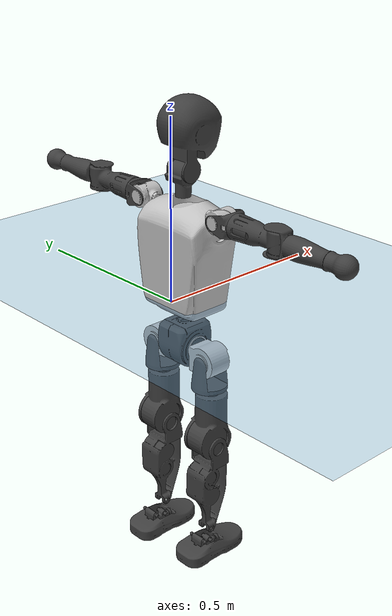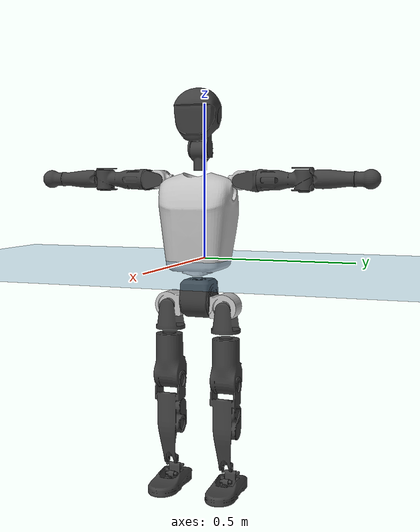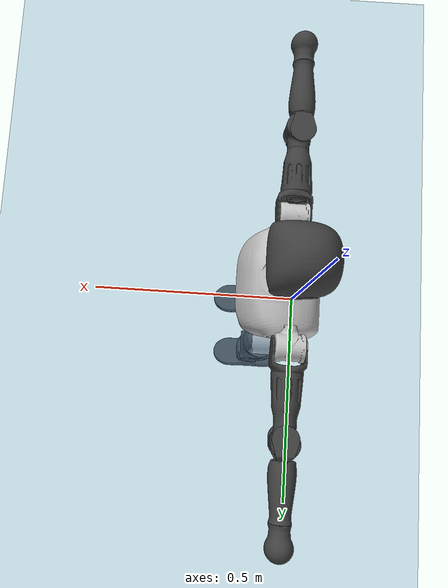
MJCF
<mujoco model="T1">
  <compiler angle="radian" assetdir="assets" balanceinertia="true" inertiafromgeom="false"/>

  <option timestep="0.005" density="1.2" viscosity="2e-05"/>

  <size nkey="1"/>

  <visual>
    <quality shadowsize="8192"/>
    <map shadowclip="0.5"/>
  </visual>

  <default>
    <default class="/">
      <joint armature="0.01" damping="0.01" frictionloss="0.1"/>
      <geom contype="0" conaffinity="0" group="1" solref="-1000 -80"/>
      <site size="0.01 0.005 0.005" group="5"/>
      <general forcelimited="true" biastype="affine" gainprm="25" biasprm="0 -25 -0.6"/>
      <default class="t1">
        <geom rgba="0.25 0.25 0.25 1"/>
        <default class="visual">
          <geom type="mesh" group="2"/>
        </default>
        <default class="collision">
          <geom group="3"/>
        </default>
        <default class="foot">
          <geom size="0.1115 0.05 0.015" type="box" condim="6" group="4" priority="1" solimp="0.015 1 0.015"/>
        </default>
        <default class="reward_collision_sphere">
          <geom group="5" rgba="1 0 0 1"/>
        </default>
      </default>
    </default>
  </default>

  <asset>
    <texture type="skybox" colorspace="auto" name="//unnamed_texture_0" builtin="gradient" rgb1="0.95 0.95 0.95" rgb2="0.95 0.95 0.95" width="100" height="600"/>
    <texture type="2d" colorspace="auto" name="texplane" builtin="checker" rgb1="0.345 0.575 0.748" rgb2="0.345 0.575 0.748" markrgb="1 1 1" width="512" height="512"/>
    <material name="MatPlane" class="/" texture="texplane" texuniform="true" texrepeat="2 2" specular="0.9"/>
    <mesh name="Trunk" class="/" file="Trunk.stl"/>
    <mesh name="H1" class="/" file="H1.stl"/>
    <mesh name="H2" class="/" file="H2.stl"/>
    <mesh name="AL1" class="/" file="AL1.stl"/>
    <mesh name="AL2" class="/" file="AL2.stl"/>
    <mesh name="AL3" class="/" file="AL3.stl"/>
    <mesh name="left_hand_link" class="/" file="left_hand_link.stl"/>
    <mesh name="AR1" class="/" file="AR1.stl"/>
    <mesh name="AR2" class="/" file="AR2.stl"/>
    <mesh name="AR3" class="/" file="AR3.stl"/>
    <mesh name="right_hand_link" class="/" file="right_hand_link.stl"/>
    <mesh name="Waist" class="/" file="Waist.stl"/>
    <mesh name="Hip_Pitch_Left" class="/" file="Hip_Pitch_Left.stl"/>
    <mesh name="Hip_Roll_Left" class="/" file="Hip_Roll_Left.stl"/>
    <mesh name="Hip_Yaw_Left" class="/" file="Hip_Yaw_Left.stl"/>
    <mesh name="Shank_Left" class="/" file="Shank_Left.stl"/>
    <mesh name="Ankle_Cross_Left" class="/" file="Ankle_Cross_Left.stl"/>
    <mesh name="left_foot_link" class="/" file="left_foot_link.stl"/>
    <mesh name="Hip_Pitch_Right" class="/" file="Hip_Pitch_Right.stl"/>
    <mesh name="Hip_Roll_Right" class="/" file="Hip_Roll_Right.stl"/>
    <mesh name="Hip_Yaw_Right" class="/" file="Hip_Yaw_Right.stl"/>
    <mesh name="Shank_Right" class="/" file="Shank_Right.stl"/>
    <mesh name="Ankle_Cross_Right" class="/" file="Ankle_Cross_Right.stl"/>
    <mesh name="right_foot_link" class="/" file="right_foot_link.stl"/>
  </asset>

  <worldbody>
    <geom name="floor" class="/" size="100 100 0.125" type="plane" group="0" material="MatPlane"/>
    <light name="toplight_shadow" class="/" pos="0 0 5" dir="0.0990148 0.0990148 -0.990148" type="directional" ambient="0.04 0.04 0.04" diffuse="0.55 0.55 0.55" specular="0.12 0.12 0.12"/>
    <light name="toplight_fill" class="/" pos="0 0 5" dir="0.0990148 0.0990148 -0.990148" type="directional" castshadow="false" ambient="0.04 0.04 0.04" diffuse="0.3 0.3 0.3" specular="0.08 0.08 0.08"/>
    <body name="trunk" childclass="t1" pos="0.00095528 -0.00270992 0.000364614" quat="1 0.000344272 -0.000308594 -0.000587699">
      <inertial pos="0.0360626 -0.00306229 0.120469" quat="0.999914 0.000810178 -0.0125064 0.0037347" mass="8.9314" diaginertia="0.0157775 0.0449307 0.119501"/>
      <joint name="//unnamed_joint_0" type="free" armature="0" damping="0" frictionloss="0"/>
      <geom name="//unnamed_geom_1" class="visual" rgba="0.76 0.76 0.76 1" mesh="Trunk"/>
      <geom name="//unnamed_geom_2" class="collision" size="0.0695668 0.0927557 0.139134" pos="0.0423561 0 0.1404" type="box"/>
      <geom name="//unnamed_geom_3" class="reward_collision_sphere" size="0.106669" pos="0.0423561 0 0.117"/>
      <geom name="//unnamed_geom_4" class="reward_collision_sphere" size="0.0139134" pos="0.0423561 0.0770728 0"/>
      <geom name="//unnamed_geom_5" class="reward_collision_sphere" size="0.0139134" pos="0.0423561 -0.0770728 0"/>
      <geom name="//unnamed_geom_6" class="reward_collision_sphere" size="0.0139134" pos="0.0423561 0.0970211 0.210599"/>
      <geom name="//unnamed_geom_7" class="reward_collision_sphere" size="0.0139134" pos="0.0423561 -0.0970211 0.210599"/>
      <site name="imu" pos="0.0137839 0.00334019 -0.0137669" size="0.00927557"/>
      <camera name="track" pos="0 -1.81348 0" quat="0.707107 0.707107 0 0" mode="trackcom"/>
      <camera name="ego_camera" pos="0.0861241 0 0.491399" quat="-0.5 -0.5 0.5 0.5"/>
      <body name="H1" pos="0.0402729 0.00227503 0.286305" quat="0.999999 -0.00075784 0.000754311 0.000120482">
        <inertial pos="-0.00420789 -0.000330348 0.0697236" quat="0.759331 -0.010238 -0.000841852 0.650623" mass="0.364553" diaginertia="4.36202e-05 0.000139855 0.000315851"/>
        <joint name="AAHead_yaw" pos="0 0 0" axis="0.00691924 -0.00215774 0.999974" stiffness="0.000155427" range="-1.59763 1.574" armature="0.00794094" damping="0.0121794" frictionloss="0.0904079"/>
        <geom name="//unnamed_geom_8" class="visual" mesh="H1"/>
        <body name="H2" pos="0.00192432 0.00123605 0.0702392" quat="1 -1.75464e-05 2.90022e-05 -1.65626e-06">
          <inertial pos="0.0068851 0.00261822 0.116014" quat="0.988532 0.105562 -0.074361 -0.0783036" mass="0.513167" diaginertia="0.000370769 0.00121674 0.00383044"/>
          <joint name="Head_pitch" pos="0 0 0" axis="-0.0116858 -0.999929 0.00230742" range="-1.21296 0.351979" armature="0.00862766" damping="0.00960772" frictionloss="0.0941215"/>
          <geom name="//unnamed_geom_9" class="visual" mesh="H2"/>
          <geom name="//unnamed_geom_10" class="collision" size="0.0742046" pos="0.00705935 0 0.1287"/>
          <geom name="//unnamed_geom_11" class="reward_collision_sphere" size="0.0834801" pos="0.0141187 0 0.117"/>
        </body>
      </body>
      <body name="AL1" pos="0.0394177 0.0990102 0.255332" quat="1 -3.09755e-05 0.000302191 -4.99393e-05">
        <inertial pos="-0.00196541 0.0394841 -0.00146046" quat="0.503389 0.492371 -0.506081 0.498049" mass="0.424094" diaginertia="0.000240388 0.000795846 0.000621805"/>
        <joint name="Left_Shoulder_Pitch" pos="0 0 0" axis="-0.00641224 0.999979 -0.00057612" stiffness="0.00979268" range="-3.31954 1.16757" armature="0.0092311" damping="0.00971903" frictionloss="0.0940627"/>
        <geom name="//unnamed_geom_12" class="visual" rgba="0.76 0.76 0.76 1" mesh="AL1"/>
        <body name="AL2" pos="0.00131473 0.0437153 -0.00280702" quat="1 -6.44428e-05 -2.34694e-06 -3.46432e-06">
          <inertial pos="0.00524357 0.0317255 -0.00242338" quat="0.485331 0.505697 -0.485709 0.522313" mass="0.127414" diaginertia="7.09816e-05 0.000212843 0.000387451"/>
          <joint name="Left_Shoulder_Roll" pos="0 0 0" axis="-0.999925 -0.00783687 0.00942107" range="-1.55991 1.73026" armature="0.00930199" damping="0.0105782" frictionloss="0.0913059"/>
          <geom name="//unnamed_geom_13" class="visual" mesh="AL2"/>
          <body name="AL3" pos="0.000904704 0.0550286 0.00264786" quat="1 0.000192793 -0.000190932 -0.000320244">
            <inertial pos="-0.00345758 0.0773568 -0.000734916" quat="0.71015 0.704045 0.00117424 0.00241643" mass="0.814518" diaginertia="0.00232989 0.00785472 0.00135463"/>
            <joint name="Left_Elbow_Pitch" pos="0 0 0" axis="0.00167788 -0.999994 -0.00296106" range="-2.30739 2.27082" armature="0.00928583" damping="0.0107486" frictionloss="0.0973604"/>
            <geom name="//unnamed_geom_14" class="visual" mesh="AL3"/>
            <geom name="//unnamed_geom_15" class="collision" size="0.0278267 0.0695668" pos="0 0.0453369 0" quat="0.707105 0.707108 0 0" type="cylinder"/>
            <geom name="//unnamed_geom_16" class="reward_collision_sphere" size="0.033392"/>
            <body name="left_hand_link" pos="0.00212764 0.136444 0.00324298" quat="1 -6.08703e-06 7.24579e-06 -1.09874e-05">
              <inertial pos="0.00164294 0.096559 -0.00164493" quat="0.708951 0.705203 0.00594977 -0.00642959" mass="0.261288" diaginertia="0.00143755 0.00498683 0.000487684"/>
              <joint name="Left_Elbow_Yaw" pos="0 0 0" axis="-0.00318046 0.00731407 0.999968" range="-2.4492 -0.0158006" armature="0.0107228" damping="0.0242298" frictionloss="0.0923655"/>
              <geom name="//unnamed_geom_17" class="visual" mesh="left_hand_link"/>
              <geom name="//unnamed_geom_18" class="collision" size="0.0278267 0.0811612" pos="0 0.117876 0" quat="0.707105 0.707108 0 0" type="cylinder"/>
              <geom name="//unnamed_geom_19" class="reward_collision_sphere" size="0.0463778"/>
              <geom name="//unnamed_geom_20" class="reward_collision_sphere" size="0.0324645" pos="0 0.0997413 0"/>
              <geom name="//unnamed_geom_21" class="reward_collision_sphere" size="0.0324645" pos="0 0.194949 0"/>
            </body>
          </body>
        </body>
      </body>
      <body name="AR1" pos="0.0420337 -0.0926159 0.257311" quat="1 -1.62507e-05 0.000353922 5.48149e-05">
        <inertial pos="-0.000802241 -0.0435049 0.00250028" quat="0.503627 0.494918 -0.504872 0.496508" mass="0.429464" diaginertia="0.00023558 0.000815806 0.00064667"/>
        <joint name="Right_Shoulder_Pitch" pos="0 0 0" axis="0.00633974 -0.99998 -0.000520439" range="-1.16932 3.3177" armature="0.00844421" damping="0.0210419" frictionloss="0.0811342"/>
        <geom name="//unnamed_geom_22" class="visual" rgba="0.76 0.76 0.76 1" mesh="AR1"/>
        <body name="AR2" pos="0.000607174 -0.0433043 -0.0014974" quat="0.999999 -0.000137666 -9.36721e-05 -0.00123457">
          <inertial pos="0.00030766 -0.0326182 -0.000302677" quat="0.507468 0.49322 -0.519507 0.478877" mass="0.123743" diaginertia="6.77854e-05 0.000211472 0.00037197"/>
          <joint name="Right_Shoulder_Roll" pos="0 0 0" axis="-0.999993 -0.00257503 -0.00289064" range="-1.7902 1.51996" armature="0.00929128" damping="0" frictionloss="0.0955299"/>
          <geom name="//unnamed_geom_23" class="visual" mesh="AR2"/>
          <body name="AR3" pos="-0.00349434 -0.0551173 0.00114091" quat="1 0.000880747 2.54466e-05 0.000440988">
            <inertial pos="5.17534e-05 -0.0785103 0.00268108" quat="0.708034 0.706178 -0.000474054 -0.000516654" mass="0.808666" diaginertia="0.00227055 0.00761436 0.00131722"/>
            <joint name="Right_Elbow_Pitch" pos="0 0 0" axis="-0.00348129 0.999906 0.0132267" range="-2.31329 2.2684" armature="0.00898298" damping="0.011985" frictionloss="0.105199"/>
            <geom name="//unnamed_geom_24" class="visual" mesh="AR3"/>
            <geom name="//unnamed_geom_25" class="collision" size="0.0278267 0.0695668" pos="0 -0.0453369 0" quat="0.707105 0.707108 0 0" type="cylinder"/>
            <geom name="//unnamed_geom_26" class="reward_collision_sphere" size="0.033392"/>
            <body name="right_hand_link" pos="-0.00392442 -0.136154 0.00161991" quat="0.999999 0.00072394 -0.000965558 0.000110981">
              <inertial pos="0.00057792 -0.0972157 -0.00110197" quat="0.70694 0.707272 -0.000985908 -0.00131687" mass="0.263906" diaginertia="0.00141708 0.00477383 0.00047642"/>
              <joint name="Right_Elbow_Yaw" pos="0 0 0" axis="-0.00199622 -0.00347754 0.999992" range="-0.00809215 2.39774" armature="0.00841578" damping="0.0122738" frictionloss="0.094597"/>
              <geom name="//unnamed_geom_27" class="visual" mesh="right_hand_link"/>
              <geom name="//unnamed_geom_28" class="collision" size="0.0278267 0.0811612" pos="0 -0.117876 0" quat="0.707105 0.707108 0 0" type="cylinder"/>
              <geom name="//unnamed_geom_29" class="reward_collision_sphere" size="0.0463778"/>
              <geom name="//unnamed_geom_30" class="reward_collision_sphere" size="0.0324645" pos="0 -0.0997413 0"/>
              <geom name="//unnamed_geom_31" class="reward_collision_sphere" size="0.0324645" pos="0 -0.194949 0"/>
            </body>
          </body>
        </body>
      </body>
      <body name="Waist" pos="0.043105 -0.00147342 -0.132087" quat="1 -7.237e-05 -0.000328311 -0.000221268">
        <inertial pos="0.00314231 0.00198338 0.00903972" quat="0.982609 0.0123254 -0.185275 -7.15522e-05" mass="1.93009" diaginertia="0.00089138 0.00302303 0.00970707"/>
        <joint name="Waist" pos="0 0 0" axis="-0.000528837 -0.00943544 0.999955" range="-1.62159 1.52329" armature="0.0087062" damping="0.00677895" frictionloss="0.105885"/>
        <geom name="//unnamed_geom_32" class="visual" mesh="Waist"/>
        <body name="Hip_Pitch_Left" pos="0.00412803 0.0938206 -0.00113791" quat="1 1.63106e-05 -3.63834e-05 0.000939634">
          <inertial pos="-0.00141681 -0.00753324 -0.0230961" quat="0.973383 0.228938 0.0105206 -0.00175354" mass="0.778388" diaginertia="0.000305722 0.00086712 0.00266189"/>
          <joint name="Left_Hip_Pitch" pos="0 0 0" axis="0.0166506 0.999861 0.000365281" stiffness="0.0204245" range="-1.79778 1.61295" armature="0.00874696" damping="0" frictionloss="0.09066"/>
          <geom name="//unnamed_geom_33" class="visual" rgba="0.76 0.76 0.76 1" mesh="Hip_Pitch_Left"/>
          <body name="Hip_Roll_Left" pos="0.00158892 0.000677545 -0.0262999" quat="1 6.37269e-05 3.26337e-05 -0.000334291">
            <inertial pos="0.000946498 0.000248918 -0.065068" quat="0.705641 -0.00813199 -0.00698343 0.708488" mass="0.31308" diaginertia="0.000320976 0.000931132 0.00114034"/>
            <joint name="Left_Hip_Roll" pos="0 0 0" axis="-0.999887 -0.0125304 -0.0082965" range="-1.61554 0.231294" armature="0.00908648" damping="0.019444" frictionloss="0.089219"/>
            <geom name="//unnamed_geom_34" class="visual" mesh="Hip_Roll_Left"/>
            <geom name="//unnamed_geom_35" class="reward_collision_sphere" size="0.0510156"/>
            <body name="Hip_Yaw_Left" pos="0.00167236 0.00122012 -0.0968797" quat="1 -0.000192468 9.80754e-06 -0.00033154">
              <inertial pos="-0.00736836 -0.00085561 -0.102703" quat="0.701311 -0.0332741 -0.0230358 0.711706" mass="1.73208" diaginertia="0.00476723 0.0158166 0.00607325"/>
              <joint name="Left_Hip_Yaw" pos="0 0 0" axis="0.000720462 -0.00125392 -0.999999" stiffness="0.00413148" range="-1.00617 1.01069" armature="0.0107058" damping="0.0120217" frictionloss="0.0950361"/>
              <geom name="//unnamed_geom_36" class="visual" mesh="Hip_Yaw_Left"/>
              <geom name="//unnamed_geom_37" class="collision" size="0.0463778 0.0742046" type="cylinder"/>
              <body name="Shank_Left" pos="-0.00913322 -0.00131335 -0.158402" quat="0.999999 0.000781068 0.000959711 -0.00011238">
                <inertial pos="-0.00442963 0.000427387 -0.147689" quat="0.997532 -0.000372823 -0.0245006 0.0658001" mass="1.35929" diaginertia="0.00601582 0.0200186 0.00379488"/>
                <joint name="Left_Knee_Pitch" pos="0 0 0" axis="0.00105468 0.999992 0.00379651" stiffness="0.00240599" range="0.0567384 2.3493" armature="0.00896116" damping="0" frictionloss="0.0860884"/>
                <geom name="//unnamed_geom_38" class="visual" mesh="Shank_Left"/>
                <geom name="//unnamed_geom_39" class="collision" size="0.0463778 0.0695668" pos="0 0 -0.1404" type="cylinder"/>
                <geom name="//unnamed_geom_40" class="reward_collision_sphere" size="0.0602912"/>
                <body name="Ankle_Cross_Left" pos="-0.00315488 -0.00230448 -0.330029" quat="1 -0.000354366 0.000381697 -3.63211e-05">
                  <inertial pos="-0.00396614 0.00151436 -0.00931486" quat="0.44232 0.551647 0.549652 0.444884" mass="0.0567013" diaginertia="5.29294e-06 1.55967e-05 2.48369e-05"/>
                  <joint name="Left_Ankle_Pitch" pos="0 0 0" axis="-0.0108732 0.999939 -0.00189119" stiffness="0.0110689" range="-0.92763 0.363381" armature="0.00834394" damping="0.0205765" frictionloss="0.105866"/>
                  <geom name="//unnamed_geom_41" class="visual" mesh="Ankle_Cross_Left"/>
                  <body name="left_foot_link" pos="-0.00201271 0.00246366 -0.0132965" quat="1 0.000217797 0.000244834 -0.000345134">
                    <inertial pos="-0.00161001 -0.000204126 -0.0127369" quat="-0.0111481 0.62725 0.000574889 0.778738" mass="0.534135" diaginertia="0.000496042 0.00149346 0.00500247"/>
                    <joint name="Left_Ankle_Roll" pos="0 0 0" axis="-0.999999 -0.000330224 -0.00127754" range="-0.476678 0.412634" armature="0.010707" damping="0.0170501" frictionloss="0.0853727"/>
                    <geom name="//unnamed_geom_42" class="visual" mesh="left_foot_link"/>
                    <geom name="left_foot" class="foot" size="0.105545 0.0416903 0.014371" pos="0.00705935 0 -0.0175499"/>
                    <geom name="//unnamed_geom_44" class="reward_collision_sphere" size="0.048233" pos="0.00705935 0 -0.0175499"/>
                    <geom name="//unnamed_geom_45" class="reward_collision_sphere" size="0.0278267" pos="0.0670639 -0.020855 -0.0175499"/>
                    <geom name="//unnamed_geom_46" class="reward_collision_sphere" size="0.0278267" pos="-0.0494155 -0.020855 -0.0175499"/>
                    <site name="left_foot" class="foot" pos="0.00705935 0 -0.0175499" size="0.00927557"/>
                  </body>
                </body>
              </body>
            </body>
          </body>
        </body>
        <body name="Hip_Pitch_Right" pos="0.00108477 -0.0987903 0.000742118" quat="1 -0.000111537 0.000449957 0.000722934">
          <inertial pos="0.00243342 0.00429121 -0.0180207" quat="0.973896 -0.226593 0.0134472 -0.00133287" mass="0.816376" diaginertia="0.000316431 0.000938312 0.00280772"/>
          <joint name="Right_Hip_Pitch" pos="0 0 0" axis="-0.00426417 -0.999989 0.0017339" range="-1.61087 1.78857" armature="0.0106979" damping="0.00860589" frictionloss="0.0816479"/>
          <geom name="//unnamed_geom_47" class="visual" rgba="0.76 0.76 0.76 1" mesh="Hip_Pitch_Right"/>
          <body name="Hip_Roll_Right" pos="0.000989977 -0.00177105 -0.02488" quat="1 -1.096e-05 -0.000164477 2.62644e-05">
            <inertial pos="0.00275838 0.00190122 -0.0600243" quat="0.708737 -0.0103316 -0.00660938 0.705366" mass="0.323881" diaginertia="0.000315181 0.000993348 0.00116977"/>
            <joint name="Right_Hip_Roll" pos="0 0 0" axis="-0.99986 -0.0147617 0.00787839" stiffness="0.000561783" range="-0.201897 1.55608" armature="0.00917938" damping="0.00245774" frictionloss="0.0872666"/>
            <geom name="//unnamed_geom_48" class="visual" mesh="Hip_Roll_Right"/>
            <geom name="//unnamed_geom_49" class="reward_collision_sphere" size="0.0510156"/>
            <body name="Hip_Yaw_Right" pos="0.00139353 -0.00354735 -0.0938886" quat="0.999999 -0.000655853 -7.29298e-05 0.000845941">
              <inertial pos="-0.00437933 -0.00342985 -0.101776" quat="0.715163 -0.0330503 -0.034202 0.697337" mass="1.77864" diaginertia="0.00446192 0.0160499 0.0056103"/>
              <joint name="Right_Hip_Yaw" pos="0 0 0" axis="0.00113997 0.000599711 -0.999999" stiffness="0.0115682" range="-0.991505 1.02014" armature="0.00799682" damping="0.0116657" frictionloss="0.0882845"/>
              <geom name="//unnamed_geom_50" class="visual" mesh="Hip_Yaw_Right"/>
              <geom name="//unnamed_geom_51" class="collision" size="0.0463778 0.0742046" type="cylinder"/>
              <body name="Shank_Right" pos="-0.00861123 0.00197072 -0.158701" quat="0.999999 0.00153051 4.17863e-05 -7.00046e-05">
                <inertial pos="-0.00172283 -0.00150885 -0.143172" quat="0.999397 -0.00224644 -0.0170348 -0.0301881" mass="1.34463" diaginertia="0.00617615 0.0207424 0.00433691"/>
                <joint name="Right_Knee_Pitch" pos="0 0 0" axis="-0.000958473 -0.999997 0.0023838" range="-2.3518 0.0547054" armature="0.00924563" damping="0.0160244" frictionloss="0.0975857"/>
                <geom name="//unnamed_geom_52" class="visual" mesh="Shank_Right"/>
                <geom name="//unnamed_geom_53" class="collision" size="0.0463778 0.0695668" pos="0 0 -0.1404" type="cylinder"/>
                <geom name="//unnamed_geom_54" class="reward_collision_sphere" size="0.0602912"/>
                <body name="Ankle_Cross_Right" pos="0.00420952 0.00126648 -0.328092" quat="1 0.000237893 -0.000949419 0.000180818">
                  <inertial pos="-0.00166238 0.00260885 -0.00848595" quat="0.442872 0.551019 0.551784 0.442467" mass="0.0588425" diaginertia="5.09431e-06 1.57559e-05 2.41491e-05"/>
                  <joint name="Right_Ankle_Pitch" pos="0 0 0" axis="0.00395273 -0.999918 0.0122078" stiffness="0.00878975" range="-0.354369 0.884002" armature="0.00871332" damping="0.0129004" frictionloss="0.0941008"/>
                  <geom name="//unnamed_geom_55" class="visual" mesh="Ankle_Cross_Right"/>
                  <body name="right_foot_link" pos="0.00309957 -0.00264264 -0.0120658" quat="1 0.000252656 -0.000184659 0.000217016">
                    <inertial pos="-0.000211337 0.00234144 -0.0104395" quat="0.00859807 0.626513 -0.00716141 0.779331" mass="0.563515" diaginertia="0.000480921 0.00150796 0.00504738"/>
                    <joint name="Right_Ankle_Roll" pos="0 0 0" axis="-0.999992 0.00353822 0.00159543" range="-0.440707 0.382783" armature="0.00891945" damping="0.0104123" frictionloss="0.0883695"/>
                    <geom name="//unnamed_geom_56" class="visual" mesh="right_foot_link"/>
                    <geom name="right_foot" class="foot" size="0.0968594 0.0494769 0.0142187" pos="0.00705935 0 -0.0175499"/>
                    <geom name="//unnamed_geom_58" class="reward_collision_sphere" size="0.0371023"/>
                    <geom name="//unnamed_geom_59" class="reward_collision_sphere" size="0.0278267" pos="0.00705935 0 -0.0175499"/>
                    <geom name="//unnamed_geom_60" class="reward_collision_sphere" size="0.0278267" pos="0.0670639 0.020855 -0.0175499"/>
                    <geom name="//unnamed_geom_61" class="reward_collision_sphere" size="0.0278267" pos="-0.0494155 0.020855 -0.0175499"/>
                    <site name="right_foot" class="foot" pos="0.00705935 0 -0.0175499" size="0.00927557"/>
                  </body>
                </body>
              </body>
            </body>
          </body>
        </body>
      </body>
    </body>
  </worldbody>

  <contact>
    <pair class="/" geom1="floor" geom2="left_foot" name="//unnamed_contact_0"/>
    <pair class="/" geom1="floor" geom2="right_foot" name="//unnamed_contact_1"/>
  </contact>

  <actuator>
    <general name="AAHead_yaw" class="/" joint="AAHead_yaw" forcerange="-6.11398 6.11398" gainprm="22.6719" biasprm="0 -22.6719 -0.587939"/>
    <general name="Head_pitch" class="/" joint="Head_pitch" forcerange="-6.88651 6.88651" gainprm="22.6719" biasprm="0 -22.6719 -0.587939"/>
    <general name="Left_Shoulder_Pitch" class="/" joint="Left_Shoulder_Pitch" forcerange="-16.5366 16.5366" gainprm="22.6719" biasprm="0 -22.6719 -0.587939"/>
    <general name="Left_Shoulder_Roll" class="/" joint="Left_Shoulder_Roll" forcerange="-16.3788 16.3788" gainprm="22.6719" biasprm="0 -22.6719 -0.587939"/>
    <general name="Left_Elbow_Pitch" class="/" joint="Left_Elbow_Pitch" forcerange="-15.0954 15.0954" gainprm="22.6719" biasprm="0 -22.6719 -0.587939"/>
    <general name="Left_Elbow_Yaw" class="/" joint="Left_Elbow_Yaw" forcerange="-16.9187 16.9187" gainprm="22.6719" biasprm="0 -22.6719 -0.587939"/>
    <general name="Right_Shoulder_Pitch" class="/" joint="Right_Shoulder_Pitch" forcerange="-16.6366 16.6366" gainprm="22.6719" biasprm="0 -22.6719 -0.587939"/>
    <general name="Right_Shoulder_Roll" class="/" joint="Right_Shoulder_Roll" forcerange="-16.2526 16.2526" gainprm="22.6719" biasprm="0 -22.6719 -0.587939"/>
    <general name="Right_Elbow_Pitch" class="/" joint="Right_Elbow_Pitch" forcerange="-14.9775 14.9775" gainprm="22.6719" biasprm="0 -22.6719 -0.587939"/>
    <general name="Right_Elbow_Yaw" class="/" joint="Right_Elbow_Yaw" forcerange="-14.9067 14.9067" gainprm="22.6719" biasprm="0 -22.6719 -0.587939"/>
    <general name="Waist" class="/" joint="Waist" forcerange="-25.095 25.095" gainprm="22.6719" biasprm="0 -22.6719 -0.587939"/>
    <general name="Left_Hip_Pitch" class="/" joint="Left_Hip_Pitch" forcerange="-43.1969 43.1969" gainprm="22.6719" biasprm="0 -22.6719 -0.587939"/>
    <general name="Left_Hip_Roll" class="/" joint="Left_Hip_Roll" forcerange="-24.9976 24.9976" gainprm="22.6719" biasprm="0 -22.6719 -0.587939"/>
    <general name="Left_Hip_Yaw" class="/" joint="Left_Hip_Yaw" forcerange="-25.009 25.009" gainprm="22.6719" biasprm="0 -22.6719 -0.587939"/>
    <general name="Left_Knee_Pitch" class="/" joint="Left_Knee_Pitch" forcerange="-59.899 59.899" gainprm="22.6719" biasprm="0 -22.6719 -0.587939"/>
    <general name="Left_Ankle_Pitch" class="/" joint="Left_Ankle_Pitch" forcerange="-19.3695 19.3695" gainprm="22.6719" biasprm="0 -22.6719 -0.587939"/>
    <general name="Left_Ankle_Roll" class="/" joint="Left_Ankle_Roll" forcerange="-12.9551 12.9551" gainprm="22.6719" biasprm="0 -22.6719 -0.587939"/>
    <general name="Right_Hip_Pitch" class="/" joint="Right_Hip_Pitch" forcerange="-40.2481 40.2481" gainprm="22.6719" biasprm="0 -22.6719 -0.587939"/>
    <general name="Right_Hip_Roll" class="/" joint="Right_Hip_Roll" forcerange="-29.6746 29.6746" gainprm="22.6719" biasprm="0 -22.6719 -0.587939"/>
    <general name="Right_Hip_Yaw" class="/" joint="Right_Hip_Yaw" forcerange="-25.132 25.132" gainprm="22.6719" biasprm="0 -22.6719 -0.587939"/>
    <general name="Right_Knee_Pitch" class="/" joint="Right_Knee_Pitch" forcerange="-49.7045 49.7045" gainprm="22.6719" biasprm="0 -22.6719 -0.587939"/>
    <general name="Right_Ankle_Pitch" class="/" joint="Right_Ankle_Pitch" forcerange="-19.2511 19.2511" gainprm="22.6719" biasprm="0 -22.6719 -0.587939"/>
    <general name="Right_Ankle_Roll" class="/" joint="Right_Ankle_Roll" forcerange="-15.0967 15.0967" gainprm="22.6719" biasprm="0 -22.6719 -0.587939"/>
  </actuator>

  <sensor>
    <gyro site="imu" name="imu_angular_velocity"/>
    <velocimeter site="imu" name="imu_linear_velocity"/>
    <framelinvel objtype="site" objname="left_foot" name="left_foot_global_linear_velocity"/>
    <framelinvel objtype="site" objname="right_foot" name="right_foot_global_linear_velocity"/>
  </sensor>

  <keyframe>
    <key name="home" qpos="0 0 0.6385 1 0 0 0 0 0 0 1.4 0 -0.4 0 -1.4 0 0.4 0 -0.4 0 0 0.8 -0.4 0 0.4 0 0 -0.8 0.4 0"/>
  </keyframe>
</mujoco>
